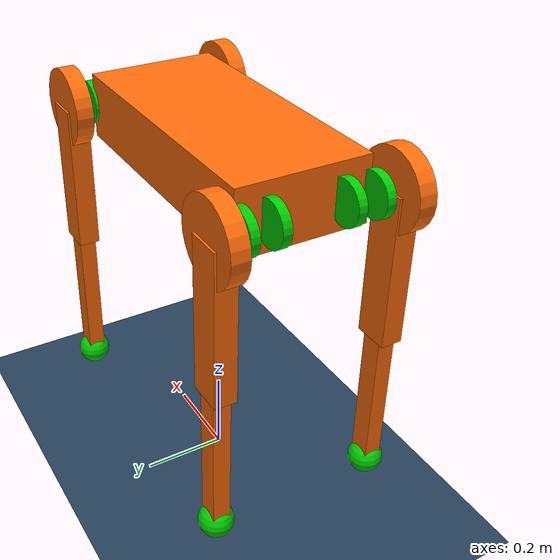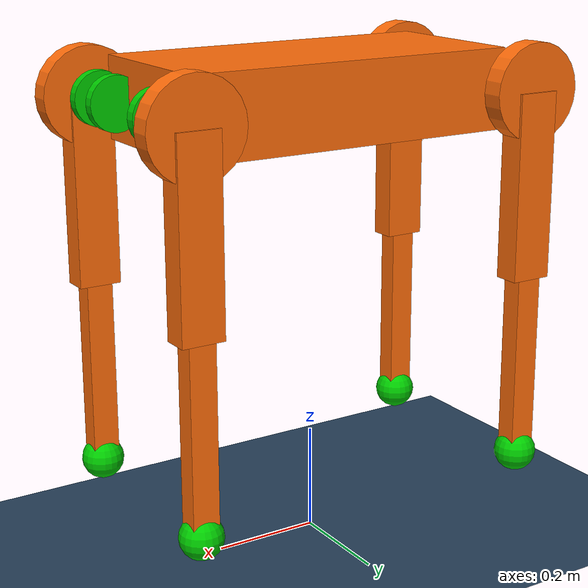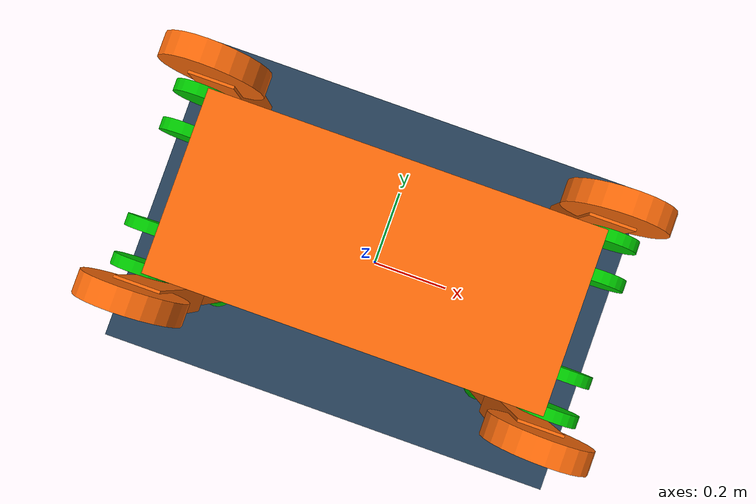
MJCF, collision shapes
<mujoco model="b1 scene">
  <include file="b1.xml"/>

  <statistic center="0 0 0.1" extent="0.8"/>

  <visual>
    <headlight diffuse="0.6 0.6 0.6" ambient="0.3 0.3 0.3" specular="0 0 0"/>
    <rgba haze="0.15 0.25 0.35 1"/>
    <global azimuth="-130" elevation="-20"/>
  </visual>

  <asset>
    <texture type="skybox" builtin="gradient" rgb1="0.3 0.5 0.7" rgb2="0 0 0" width="512" height="3072"/>
    <texture type="2d" name="groundplane" builtin="checker" mark="edge" rgb1="0.2 0.3 0.4" rgb2="0.1 0.2 0.3"
      markrgb="0.8 0.8 0.8" width="300" height="300"/>
    <material name="groundplane" texture="groundplane" texuniform="true" texrepeat="5 5" reflectance="0.2"/>
  </asset>

  <worldbody>
    <light pos="0 0 1.5" dir="0 0 -1" directional="true"/>
    <geom name="floor" size="0 0 0.05" type="plane" material="groundplane"/>
  </worldbody>
</mujoco>

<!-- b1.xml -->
<mujoco model="b1_description">
  <compiler angle="radian" meshdir="../meshes/" autolimits="true"/>

  <option cone="elliptic" impratio="100"/>

  <default>
    <default class="b1">
      <geom friction="0.6" margin="0.001" condim="1"/>
      <joint axis="0 1 0" damping="2" armature="0.01" frictionloss="0.2"/>
      <motor ctrlrange="-230.7 230.7"/>
      <default class="abduction">
        <joint axis="1 0 0" range="-3.0472 3.0472"/>
      </default>
      <default class="hip">
        <default class="front_hip">
          <joint range="-3.5708 6.4907"/>
        </default>
        <default class="back_hip">
          <joint range="-1.5236 8.5379"/>
        </default>
      </default>
      <default class="knee">
        <joint range="-4.7227 -1.83776"/>
        <motor ctrlrange="-450.43 450.43"/>
      </default>
      <default class="visual">
        <geom type="mesh" contype="0" conaffinity="0" group="2"/>
      </default>
      <default class="collision">
        <geom group="3"/>
        <default class="foot">
          <geom size="0.022" pos="-0.002 0 -0.213" priority="1" solimp="0.015 1 0.031" condim="6"
            friction="0.8 0.02 0.01"/>
        </default>
      </default>
    </default>
  </default>
  <asset>
    <material name="metal" rgba=".9 .95 .95 1"/>
    <material name="black" rgba="0 0 0 1"/>
    <material name="white" rgba="1 1 1 1"/>
    <material name="gray" rgba="0.671705 0.692426 0.774270 1"/>
    <mesh name="trunk" file="trunk.stl"/>
    <mesh name="hip" file="hip.stl"/>
    <mesh name="thigh_mirror" file="thigh_mirror.stl"/>
    <mesh name="calf" file="calf.stl"/>
    <mesh name="thigh" file="thigh.stl"/>
  </asset>
  <worldbody>
    <body name="base" pos="0 0 0.85" childclass="b1">
      <inertial pos="0.00870935 0.0021737 0.00291991" quat="0.00194753 0.691276 0.00346027 0.72258" mass="25.797" diaginertia="0.820612 0.7877 0.187707"/>
      <joint name="floating_base" type="free"/>
      <geom type="mesh" contype="0" conaffinity="0" group="1" density="0" rgba="1 0.423529 0.0392157 1" mesh="trunk"/>
      <geom size="0.3235 0.15 0.075" type="box" rgba="1 0.423529 0.0392157 1"/>
      <geom size="0.0005 0.0005 0.0005" type="box" contype="0" conaffinity="0" group="1" density="0" rgba="0.8 0 0 1"/>
      <geom size="0.0005 0.0005 0.0005" type="box" rgba="0.8 0 0 1"/>
      <geom size="0.05 0.01" pos="0.1955 -0.072 0" quat="0.707107 0 0.707107 0" type="cylinder" contype="0" conaffinity="0" group="1" density="0" rgba="0 0.8 0 1"/>
      <geom size="0.05 0.01" pos="0.1955 -0.072 0" quat="0.707107 0 0.707107 0" type="cylinder" rgba="0 0.8 0 1"/>
      <geom size="0.05 0.01" pos="0.1955 0.072 0" quat="0.707107 0 0.707107 0" type="cylinder" contype="0" conaffinity="0" group="1" density="0" rgba="0 0.8 0 1"/>
      <geom size="0.05 0.01" pos="0.1955 0.072 0" quat="0.707107 0 0.707107 0" type="cylinder" rgba="0 0.8 0 1"/>
      <geom size="0.05 0.01" pos="-0.1955 -0.072 0" quat="0.707107 0 0.707107 0" type="cylinder" contype="0" conaffinity="0" group="1" density="0" rgba="0 0.8 0 1"/>
      <geom size="0.05 0.01" pos="-0.1955 -0.072 0" quat="0.707107 0 0.707107 0" type="cylinder" rgba="0 0.8 0 1"/>
      <geom size="0.05 0.01" pos="-0.1955 0.072 0" quat="0.707107 0 0.707107 0" type="cylinder" contype="0" conaffinity="0" group="1" density="0" rgba="0 0.8 0 1"/>
      <geom size="0.05 0.01" pos="-0.1955 0.072 0" quat="0.707107 0 0.707107 0" type="cylinder" rgba="0 0.8 0 1"/>
      <site name="imu" pos="-0.02557 0 0.04232"/>
      <body name="FR_hip" pos="0.3455 -0.072 0">
        <inertial pos="-0.018016 -0.00971213 9.67456e-05" quat="0.514022 0.512801 0.485949 0.486488" mass="2.366" diaginertia="0.00980696 0.00664332 0.0045362"/>
        <joint name="FR_hip_joint" pos="0 0 0" axis="1 0 0" range="-0.75 0.75"/>
        <geom quat="0 1 0 0" type="mesh" contype="0" conaffinity="0" group="1" density="0" rgba="1 0.423529 0.0392157 1" mesh="hip"/>
        <geom size="0.09 0.02" pos="0 -0.12675 0" quat="0.707107 0.707107 0 0" type="cylinder" rgba="1 0.423529 0.0392157 1"/>
        <geom size="0.05 0.01" pos="0 -0.00935 0" quat="0.707107 0.707107 0 0" type="cylinder" contype="0" conaffinity="0" group="1" density="0" rgba="0 0.8 0 1"/>
        <geom size="0.05 0.01" pos="0 -0.00935 0" quat="0.707107 0.707107 0 0" type="cylinder" rgba="0 0.8 0 1"/>
        <body name="FR_thigh" pos="0 -0.12675 0">
          <inertial pos="-0.000220117 0.0301731 -0.0507383" quat="0.736596 -0.0378368 0.076521 0.670924" mass="4.2" diaginertia="0.0487177 0.0459334 0.00814802"/>
          <joint name="FR_thigh_joint" pos="0 0 0" axis="0 1 0" range="-1 3.5"/>
          <geom type="mesh" contype="0" conaffinity="0" group="1" density="0" rgba="1 0.423529 0.0392157 1" mesh="thigh_mirror"/>
          <geom size="0.175 0.025 0.04" pos="0 0 -0.175" quat="0.707107 0 0.707107 0" type="box" rgba="1 0.423529 0.0392157 1"/>
          <geom size="0.05 0.01" pos="0 0.0519 0" quat="0.707107 0.707107 0 0" type="cylinder" contype="0" conaffinity="0" group="1" density="0" rgba="0 0.8 0 1"/>
          <geom size="0.05 0.01" pos="0 0.0519 0" quat="0.707107 0.707107 0 0" type="cylinder" rgba="0 0.8 0 1"/>
          <body name="FR_calf" pos="0 0 -0.35">
            <inertial pos="0.0049483 0 -0.210919" quat="0.707231 -0.00481122 -0.00483372 0.70695" mass="0.907" diaginertia="0.0162164 0.0160695 0.000406131"/>
            <joint name="FR_calf_joint" pos="0 0 0" axis="0 1 0" range="-2.6 -0.6"/>
            <geom type="mesh" contype="0" conaffinity="0" group="1" density="0" rgba="1 0.423529 0.0392157 1" mesh="calf"/>
            <geom size="0.175 0.02 0.025" pos="0 0 -0.175" quat="0.707107 0 0.707107 0" type="box" rgba="1 0.423529 0.0392157 1"/>
            <geom size="0.03" pos="0 0 -0.35" contype="0" conaffinity="0" group="1" density="0" rgba="0 0.8 0 1"/>
            <geom size="0.04" pos="0 0 -0.35" rgba="0 0.8 0 1"/>
          </body>
        </body>
      </body>
      <body name="FL_hip" pos="0.3455 0.072 0">
        <inertial pos="-0.018016 0.00971213 9.67456e-05" quat="0.486488 0.485949 0.512801 0.514022" mass="2.366" diaginertia="0.00980696 0.00664332 0.0045362"/>
        <joint name="FL_hip_joint" pos="0 0 0" axis="1 0 0" range="-0.75 0.75"/>
        <geom type="mesh" contype="0" conaffinity="0" group="1" density="0" rgba="1 0.423529 0.0392157 1" mesh="hip"/>
        <geom size="0.09 0.02" pos="0 0.12675 0" quat="0.707107 0.707107 0 0" type="cylinder" rgba="1 0.423529 0.0392157 1"/>
        <geom size="0.05 0.01" pos="0 0.00935 0" quat="0.707107 0.707107 0 0" type="cylinder" contype="0" conaffinity="0" group="1" density="0" rgba="0 0.8 0 1"/>
        <geom size="0.05 0.01" pos="0 0.00935 0" quat="0.707107 0.707107 0 0" type="cylinder" rgba="0 0.8 0 1"/>
        <body name="FL_thigh" pos="0 0.12675 0">
          <inertial pos="-0.000220117 -0.0301731 -0.0507383" quat="0.670924 0.076521 -0.0378368 0.736596" mass="4.2" diaginertia="0.0487177 0.0459334 0.00814802"/>
          <joint name="FL_thigh_joint" pos="0 0 0" axis="0 1 0" range="-1 3.5"/>
          <geom type="mesh" contype="0" conaffinity="0" group="1" density="0" rgba="1 0.423529 0.0392157 1" mesh="thigh"/>
          <geom size="0.175 0.025 0.04" pos="0 0 -0.175" quat="0.707107 0 0.707107 0" type="box" rgba="1 0.423529 0.0392157 1"/>
          <geom size="0.05 0.01" pos="0 -0.0519 0" quat="0.707107 0.707107 0 0" type="cylinder" contype="0" conaffinity="0" group="1" density="0" rgba="0 0.8 0 1"/>
          <geom size="0.05 0.01" pos="0 -0.0519 0" quat="0.707107 0.707107 0 0" type="cylinder" rgba="0 0.8 0 1"/>
          <body name="FL_calf" pos="0 0 -0.35">
            <inertial pos="0.0049483 0 -0.210919" quat="0.707231 -0.00481122 -0.00483372 0.70695" mass="0.907" diaginertia="0.0162164 0.0160695 0.000406131"/>
            <joint name="FL_calf_joint" pos="0 0 0" axis="0 1 0" range="-2.6 -0.6"/>
            <geom type="mesh" contype="0" conaffinity="0" group="1" density="0" rgba="1 0.423529 0.0392157 1" mesh="calf"/>
            <geom size="0.175 0.02 0.025" pos="0 0 -0.175" quat="0.707107 0 0.707107 0" type="box" rgba="1 0.423529 0.0392157 1"/>
            <geom size="0.03" pos="0 0 -0.35" contype="0" conaffinity="0" group="1" density="0" rgba="0 0.8 0 1"/>
            <geom size="0.04" pos="0 0 -0.35" rgba="0 0.8 0 1"/>
          </body>
        </body>
      </body>
      <body name="RR_hip" pos="-0.3455 -0.072 0">
        <inertial pos="0.018016 -0.00971213 9.67456e-05" quat="0.485949 0.486488 0.514022 0.512801" mass="2.366" diaginertia="0.00980696 0.00664332 0.0045362"/>
        <joint name="RR_hip_joint" pos="0 0 0" axis="1 0 0" range="-0.75 0.75"/>
        <geom quat="0 0 0 -1" type="mesh" contype="0" conaffinity="0" group="1" density="0" rgba="1 0.423529 0.0392157 1" mesh="hip"/>
        <geom size="0.09 0.02" pos="0 -0.12675 0" quat="0.707107 0.707107 0 0" type="cylinder" rgba="1 0.423529 0.0392157 1"/>
        <geom size="0.05 0.01" pos="0 -0.00935 0" quat="0.707107 0.707107 0 0" type="cylinder" contype="0" conaffinity="0" group="1" density="0" rgba="0 0.8 0 1"/>
        <geom size="0.05 0.01" pos="0 -0.00935 0" quat="0.707107 0.707107 0 0" type="cylinder" rgba="0 0.8 0 1"/>
        <body name="RR_thigh" pos="0 -0.12675 0">
          <inertial pos="-0.000220117 0.0301731 -0.0507383" quat="0.736596 -0.0378368 0.076521 0.670924" mass="4.2" diaginertia="0.0487177 0.0459334 0.00814802"/>
          <joint name="RR_thigh_joint" pos="0 0 0" axis="0 1 0" range="-1 3.5"/>
          <geom type="mesh" contype="0" conaffinity="0" group="1" density="0" rgba="1 0.423529 0.0392157 1" mesh="thigh_mirror"/>
          <geom size="0.175 0.025 0.04" pos="0 0 -0.175" quat="0.707107 0 0.707107 0" type="box" rgba="1 0.423529 0.0392157 1"/>
          <geom size="0.05 0.01" pos="0 0.0519 0" quat="0.707107 0.707107 0 0" type="cylinder" contype="0" conaffinity="0" group="1" density="0" rgba="0 0.8 0 1"/>
          <geom size="0.05 0.01" pos="0 0.0519 0" quat="0.707107 0.707107 0 0" type="cylinder" rgba="0 0.8 0 1"/>
          <body name="RR_calf" pos="0 0 -0.35">
            <inertial pos="0.0049483 0 -0.210919" quat="0.707231 -0.00481122 -0.00483372 0.70695" mass="0.907" diaginertia="0.0162164 0.0160695 0.000406131"/>
            <joint name="RR_calf_joint" pos="0 0 0" axis="0 1 0" range="-2.6 -0.6"/>
            <geom type="mesh" contype="0" conaffinity="0" group="1" density="0" rgba="1 0.423529 0.0392157 1" mesh="calf"/>
            <geom size="0.175 0.02 0.025" pos="0 0 -0.175" quat="0.707107 0 0.707107 0" type="box" rgba="1 0.423529 0.0392157 1"/>
            <geom size="0.03" pos="0 0 -0.35" contype="0" conaffinity="0" group="1" density="0" rgba="0 0.8 0 1"/>
            <geom size="0.04" pos="0 0 -0.35" rgba="0 0.8 0 1"/>
          </body>
        </body>
      </body>
      <body name="RL_hip" pos="-0.3455 0.072 0">
        <inertial pos="0.018016 0.00971213 9.67456e-05" quat="0.512801 0.514022 0.486488 0.485949" mass="2.366" diaginertia="0.00980696 0.00664332 0.0045362"/>
        <joint name="RL_hip_joint" pos="0 0 0" axis="1 0 0" range="-0.75 0.75"/>
        <geom quat="0 0 1 0" type="mesh" contype="0" conaffinity="0" group="1" density="0" rgba="1 0.423529 0.0392157 1" mesh="hip"/>
        <geom size="0.09 0.02" pos="0 0.12675 0" quat="0.707107 0.707107 0 0" type="cylinder" rgba="1 0.423529 0.0392157 1"/>
        <geom size="0.05 0.01" pos="0 0.00935 0" quat="0.707107 0.707107 0 0" type="cylinder" contype="0" conaffinity="0" group="1" density="0" rgba="0 0.8 0 1"/>
        <geom size="0.05 0.01" pos="0 0.00935 0" quat="0.707107 0.707107 0 0" type="cylinder" rgba="0 0.8 0 1"/>
        <body name="RL_thigh" pos="0 0.12675 0">
          <inertial pos="-0.000220117 -0.0301731 -0.0507383" quat="0.670924 0.076521 -0.0378368 0.736596" mass="4.2" diaginertia="0.0487177 0.0459334 0.00814802"/>
          <joint name="RL_thigh_joint" pos="0 0 0" axis="0 1 0" range="-1 3.5"/>
          <geom type="mesh" contype="0" conaffinity="0" group="1" density="0" rgba="1 0.423529 0.0392157 1" mesh="thigh"/>
          <geom size="0.175 0.025 0.04" pos="0 0 -0.175" quat="0.707107 0 0.707107 0" type="box" rgba="1 0.423529 0.0392157 1"/>
          <geom size="0.05 0.01" pos="0 -0.0519 0" quat="0.707107 0.707107 0 0" type="cylinder" contype="0" conaffinity="0" group="1" density="0" rgba="0 0.8 0 1"/>
          <geom size="0.05 0.01" pos="0 -0.0519 0" quat="0.707107 0.707107 0 0" type="cylinder" rgba="0 0.8 0 1"/>
          <body name="RL_calf" pos="0 0 -0.35">
            <inertial pos="0.0049483 0 -0.210919" quat="0.707231 -0.00481122 -0.00483372 0.70695" mass="0.907" diaginertia="0.0162164 0.0160695 0.000406131"/>
            <joint name="RL_calf_joint" pos="0 0 0" axis="0 1 0" range="-2.6 -0.6"/>
            <geom type="mesh" contype="0" conaffinity="0" group="1" density="0" rgba="1 0.423529 0.0392157 1" mesh="calf"/>
            <geom size="0.175 0.02 0.025" pos="0 0 -0.175" quat="0.707107 0 0.707107 0" type="box" rgba="1 0.423529 0.0392157 1"/>
            <geom size="0.03" pos="0 0 -0.35" contype="0" conaffinity="0" group="1" density="0" rgba="0 0.8 0 1"/>
            <geom size="0.04" pos="0 0 -0.35" rgba="0 0.8 0 1"/>
          </body>
        </body>
      </body>
    </body>
  </worldbody>

  <actuator>
    <motor class="abduction" name="FL_hip" joint="FL_hip_joint"/>
    <motor class="hip" name="FL_thigh" joint="FL_thigh_joint"/>
    <motor class="knee" name="FL_calf" joint="FL_calf_joint"/>
    <motor class="abduction" name="FR_hip" joint="FR_hip_joint"/>
    <motor class="hip" name="FR_thigh" joint="FR_thigh_joint"/>
    <motor class="knee" name="FR_calf" joint="FR_calf_joint"/>
    <motor class="abduction" name="RL_hip" joint="RL_hip_joint"/>
    <motor class="hip" name="RL_thigh" joint="RL_thigh_joint"/>
    <motor class="knee" name="RL_calf" joint="RL_calf_joint"/>
    <motor class="abduction" name="RR_hip" joint="RR_hip_joint"/>
    <motor class="hip" name="RR_thigh" joint="RR_thigh_joint"/>
    <motor class="knee" name="RR_calf" joint="RR_calf_joint"/>
  </actuator>

  <sensor>
    <jointpos name="FL_hip_position_sensor" joint="FL_hip_joint" noise="0.001"/>
    <jointpos name="FL_thigh_position_sensor" joint="FL_thigh_joint" noise="0.001"/>
    <jointpos name="FL_calf_position_sensor" joint="FL_calf_joint" noise="0.001"/>
    <jointpos name="FR_hip_position_sensor" joint="FR_hip_joint" noise="0.001"/>
    <jointpos name="FR_thigh_position_sensor" joint="FR_thigh_joint" noise="0.001"/>
    <jointpos name="FR_calf_position_sensor" joint="FR_calf_joint" noise="0.001"/>
    <jointpos name="RL_hip_position_sensor" joint="RL_hip_joint" noise="0.001"/>
    <jointpos name="RL_thigh_position_sensor" joint="RL_thigh_joint" noise="0.001"/>
    <jointpos name="RL_calf_position_sensor" joint="RL_calf_joint" noise="0.001"/>
    <jointpos name="RR_hip_position_sensor" joint="RR_hip_joint" noise="0.001"/>
    <jointpos name="RR_thigh_position_sensor" joint="RR_thigh_joint" noise="0.001"/>
    <jointpos name="RR_calf_position_sensor" joint="RR_calf_joint" noise="0.001"/>

    <jointvel name="FL_hip_velocity_sensor" joint="FL_hip_joint" noise="0.001"/>
    <jointvel name="FL_thigh_velocity_sensor" joint="FL_thigh_joint" noise="0.001"/>
    <jointvel name="FL_calf_velocity_sensor" joint="FL_calf_joint" noise="0.001"/>
    <jointvel name="FR_hip_velocity_sensor" joint="FR_hip_joint" noise="0.001"/>
    <jointvel name="FR_thigh_velocity_sensor" joint="FR_thigh_joint" noise="0.001"/>
    <jointvel name="FR_calf_velocity_sensor" joint="FR_calf_joint" noise="0.001"/>
    <jointvel name="RL_hip_velocity_sensor" joint="RL_hip_joint" noise="0.001"/>
    <jointvel name="RL_thigh_velocity_sensor" joint="RL_thigh_joint" noise="0.001"/>
    <jointvel name="RL_calf_velocity_sensor" joint="RL_calf_joint" noise="0.001"/>
    <jointvel name="RR_hip_velocity_sensor" joint="RR_hip_joint" noise="0.001"/>
    <jointvel name="RR_thigh_velocity_sensor" joint="RR_thigh_joint" noise="0.001"/>
    <jointvel name="RR_calf_velocity_sensor" joint="RR_calf_joint" noise="0.001"/>

    <jointactuatorfrc name="FL_hip_force_sensor" joint="FL_hip_joint" noise="0.001"/>
    <jointactuatorfrc name="FL_thigh_force_sensor" joint="FL_thigh_joint" noise="0.001"/>
    <jointactuatorfrc name="FL_calf_force_sensor" joint="FL_calf_joint" noise="0.001"/>
    <jointactuatorfrc name="FR_hip_force_sensor" joint="FR_hip_joint" noise="0.001"/>
    <jointactuatorfrc name="FR_thigh_force_sensor" joint="FR_thigh_joint" noise="0.001"/>
    <jointactuatorfrc name="FR_calf_force_sensor" joint="FR_calf_joint" noise="0.001"/>
    <jointactuatorfrc name="RL_hip_force_sensor" joint="RL_hip_joint" noise="0.001"/>
    <jointactuatorfrc name="RL_thigh_force_sensor" joint="RL_thigh_joint" noise="0.001"/>
    <jointactuatorfrc name="RL_calf_force_sensor" joint="RL_calf_joint" noise="0.001"/>
    <jointactuatorfrc name="RR_hip_force_sensor" joint="RR_hip_joint" noise="0.001"/>
    <jointactuatorfrc name="RR_thigh_force_sensor" joint="RR_thigh_joint" noise="0.001"/>
    <jointactuatorfrc name="RR_calf_force_sensor" joint="RR_calf_joint" noise="0.001"/>

    <accelerometer name="linear_acceleration" site="imu" noise="0.001"/>
    <gyro name="angular_velocity" site="imu" noise="0.001"/>

    <framequat name="imu_orientation" objtype="site" objname="imu" noise="0.001"/>
  </sensor>

  <keyframe>
    <key name="home" qpos="0 0 0.45 1 0 0 0 0 0.9 -1.8 0 0.9 -1.8 0 0.9 -1.8 0 0.9 -1.8"
      ctrl="0 0.9 -1.8 0 0.9 -1.8 0 0.9 -1.8 0 0.9 -1.8"/>
  </keyframe>
</mujoco>
